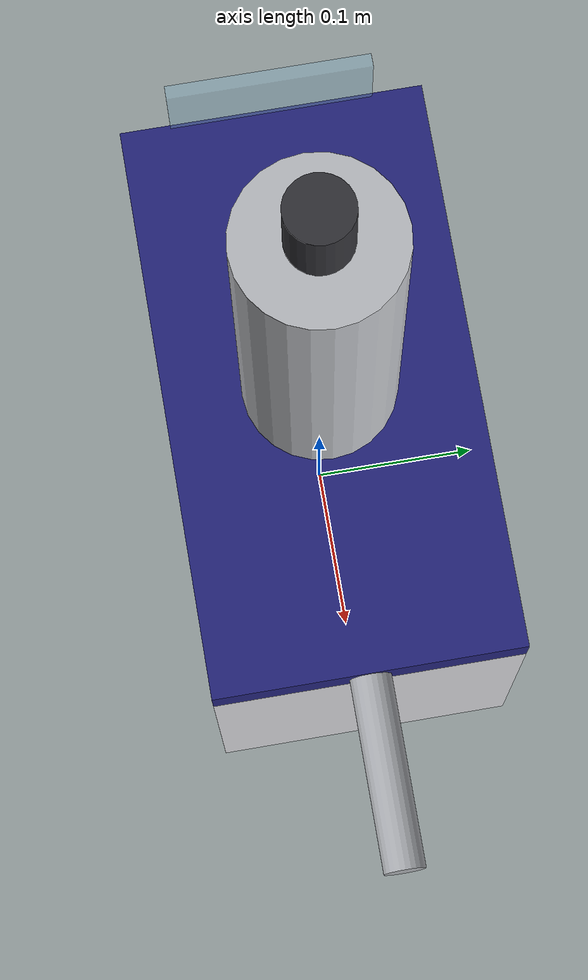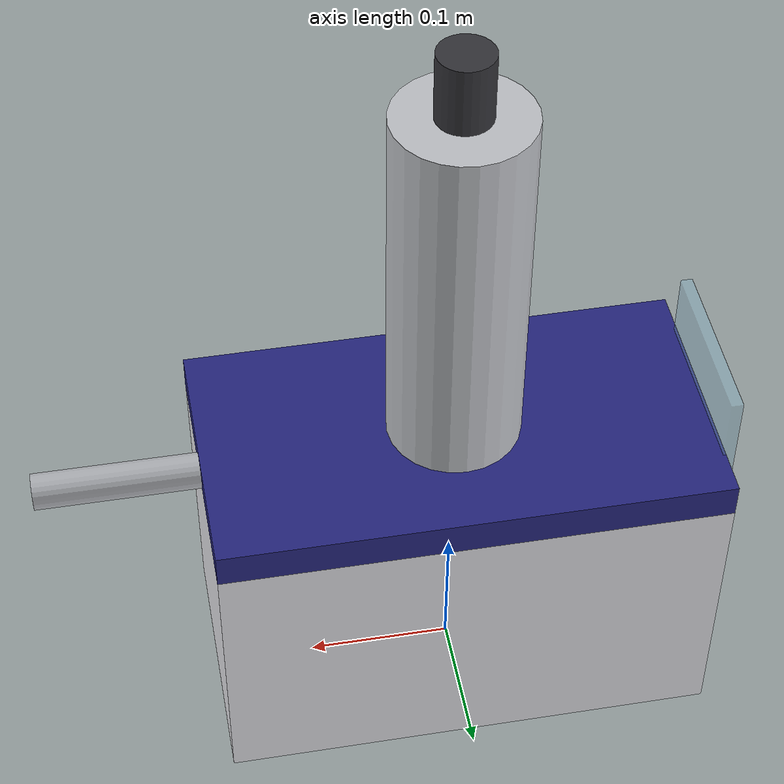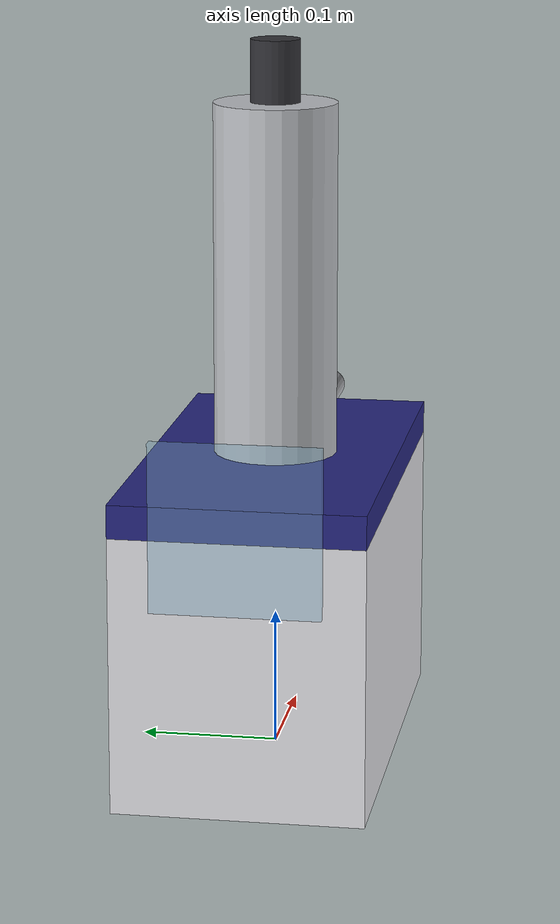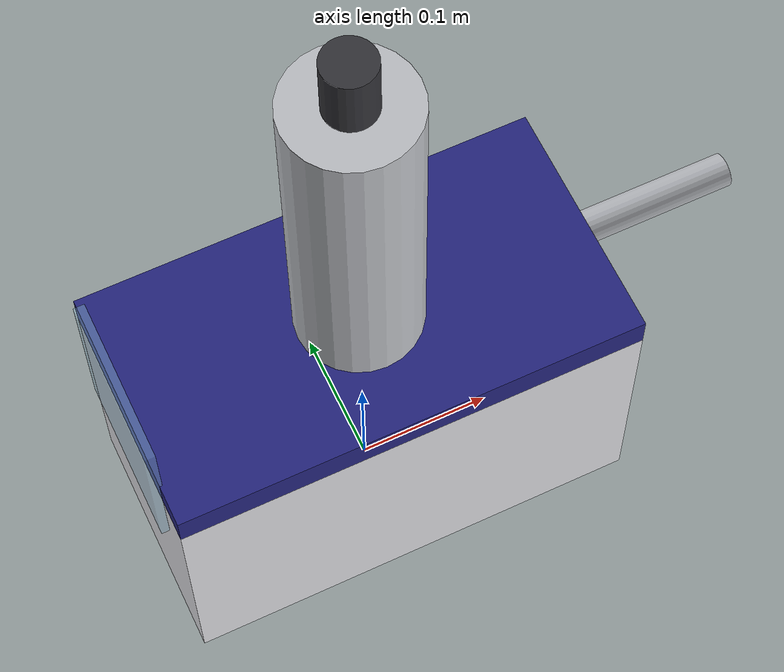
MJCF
<?xml version="1.0" encoding="utf-8"?>
<mujoco model="real_lab_qut_iontof_v2">
  <compiler angle="radian" autolimits="true"/>
  <default>
    <default class="body"><geom contype="1" conaffinity="1"/></default>
  </default>
  <worldbody>
    <body name="base">
      <geom type="box" size="0.17 0.09 0.1" pos="0 0 0.1" rgba="0.88 0.88 0.9 1" class="body"/>
      <geom type="box" size="0.17 0.09 0.012" pos="0 0 0.212" rgba="0.15 0.15 0.5 1" class="body"/>
      <geom type="cylinder" size="0.045 0.13" pos="0 0 0.35" rgba="0.75 0.76 0.78 1" class="body"/>
      <geom type="cylinder" size="0.018 0.025" pos="0 0 0.5" rgba="0.2 0.2 0.22 1" class="body"/>
      <geom type="cylinder" size="0.012 0.11" pos="0.17 0 0.21" rgba="0.7 0.71 0.73 1" class="body" quat="0.707 0 0.707 0"/>
      <body name="load_hatch" pos="-0.17 0.0 0.21">
        <joint name="load_hatch_joint" type="hinge" axis="0 1 0" range="0 1.2" damping="0.6" frictionloss="0.25"/>
  <geom type="box" size="0.004 0.06 0.06" pos="-0.002 0 0" rgba="0.55 0.75 0.85 0.4" class="body"/>
      </body>
    </body>
  </worldbody>
</mujoco>
